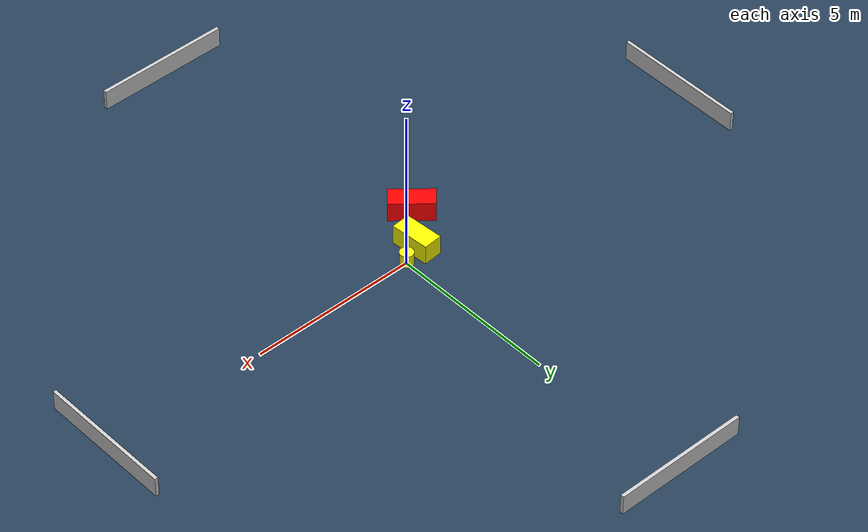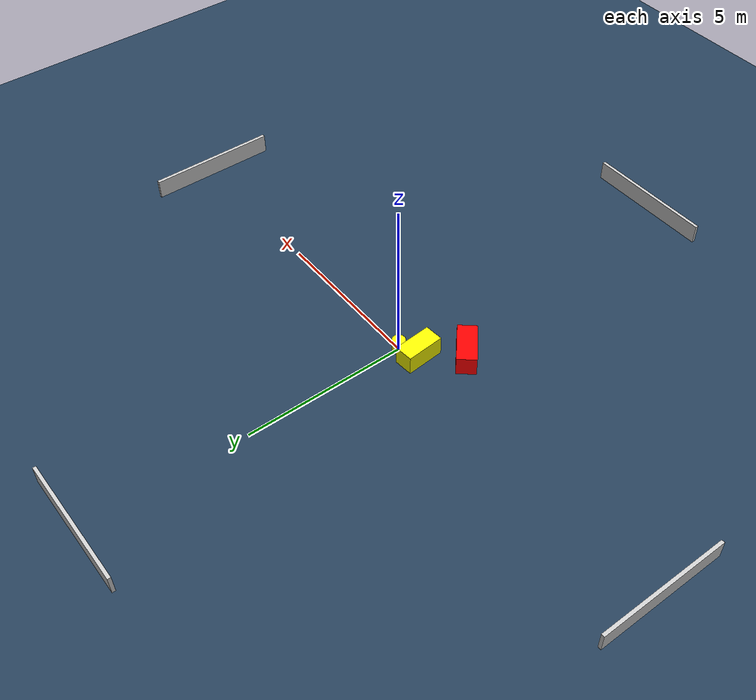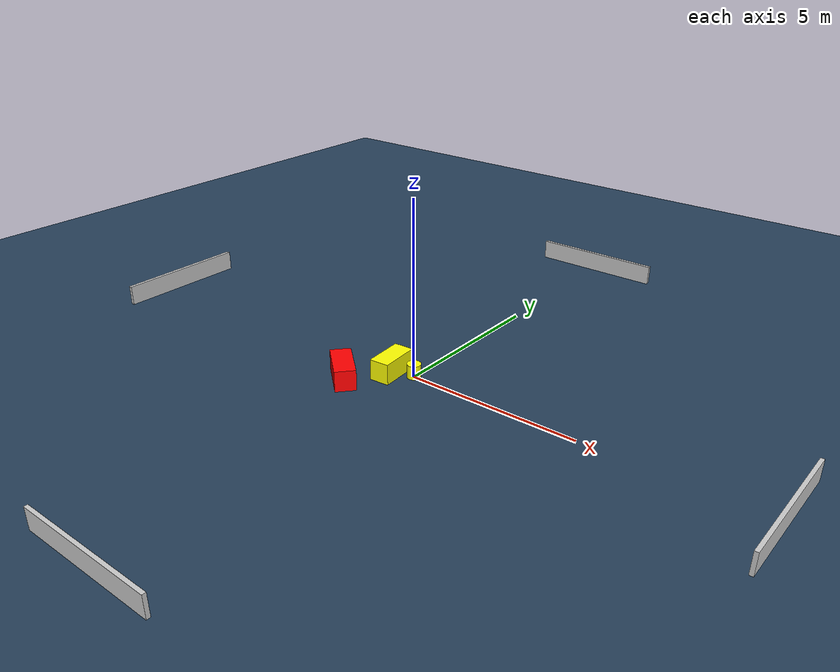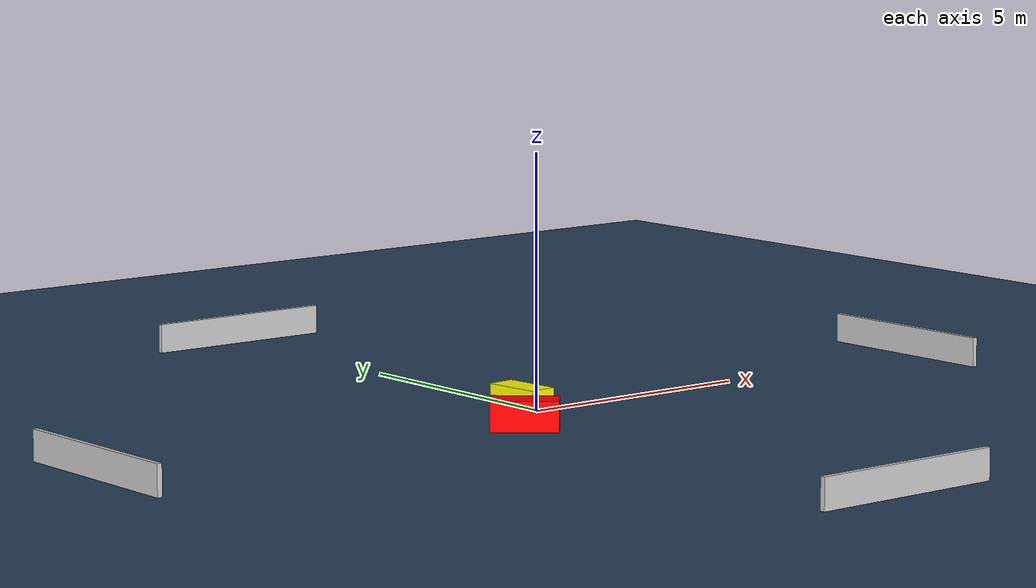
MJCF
<?xml version="1.0" ?>
<mujoco model="generated_environment">
  <option timestep="0.01" integrator="RK4" cone="elliptic"/>
  <default>
    <geom density="1"/>
  </default>
  <asset>
    <texture builtin="gradient" height="3072" name="skybox" rgb1="0.3 0.5 0.7" rgb2="0 0 0" type="skybox" width="512"/>
    <texture builtin="checker" height="300" name="groundplane" rgb1="0.2 0.3 0.4" rgb2="0.1 0.2 0.3" type="2d" width="300"/>
    <material name="groundplane" reflectance="0.2" texrepeat="5 5" texture="groundplane"/>
  </asset>
  <worldbody>
    <light dir="0 0 -1" directional="true" pos="0 0 1.5"/>
    <geom condim="3" friction="0.5 0.005 0.001" material="groundplane" name="floor" pos="0 0 0" size="0 0 0.05" type="plane"/>
    <body name="walls">
      <geom name="wall_1" condim="4" pos="-10.0 0.0 0.3" rgba="0.800000011920929 0.800000011920929 0.800000011920929 1.0" size="0.05 2.0 0.3" type="box"/>
      <geom name="wall_2" condim="4" pos="10.0 0.0 0.3" rgba="0.800000011920929 0.800000011920929 0.800000011920929 1.0" size="0.05 2.0 0.3" type="box"/>
      <geom name="wall_3" condim="4" pos="0.0 -10.0 0.3" rgba="0.800000011920929 0.800000011920929 0.800000011920929 1.0" size="2.0 0.05 0.3" type="box"/>
      <geom name="wall_4" condim="4" pos="0.0 10.0 0.3" rgba="0.800000011920929 0.800000011920929 0.800000011920929 1.0" size="2.0 0.05 0.3" type="box"/>
    </body>
    <body name="robot">
      <joint name="joint_x" type="slide" pos="0 0 0" axis="1 0 0"/>
      <joint name="joint_y" type="slide" pos="0 0 0" axis="0 1 0"/>
      <geom name="robot" type="cylinder" pos="0.0 0.0 0.2" size="0.2 0.2 0.0" mass="5.0" friction="1.0 0.005 0.0001" condim="4" rgba="1.0 1.0 0.0 1.0"/>
    </body>
    <body name="obstacle_1_movable">
      <geom name="obstacle_1_movable" condim="4" pos="-0.577285542295025 -0.25192397465351196 0.3" euler="0 0 94.62286320065894" friction="0.0 0.005 0.001" rgba="1.0 1.0 0.0 1.0" size="0.582270482120016 0.285718266193692 0.3" type="box" mass="0.1"/>
      <joint type="free"/>
    </body>
    <body name="obstacle_2_static">
      <geom name="obstacle_2_static" condim="4" pos="-1.3764899037370328 -1.3285739687333058 0.3" euler="0 0 319.02068687675774" friction="0.0 0.005 0.001" rgba="1.0 0.0 0.0 1.0" size="0.6479393479457807 0.29262421520599147 0.3" type="box"/>
    </body>
  </worldbody>
  <actuator>
    <motor name="actuator_x" joint="joint_x" gear="1" ctrlrange="-1 1"/>
    <motor name="actuator_y" joint="joint_y" gear="1" ctrlrange="-1 1"/>
  </actuator>
</mujoco>
